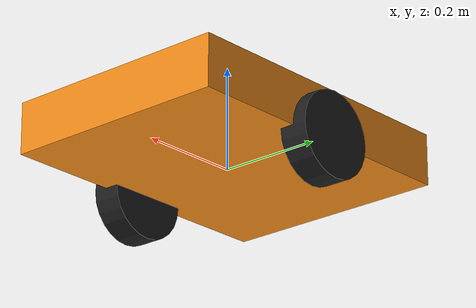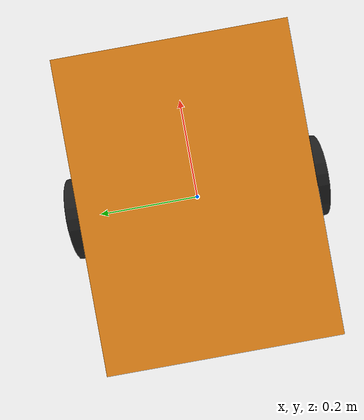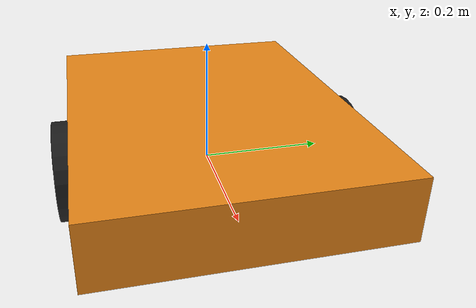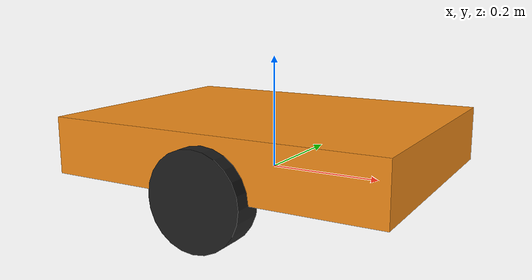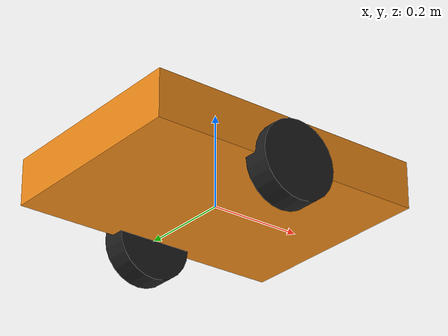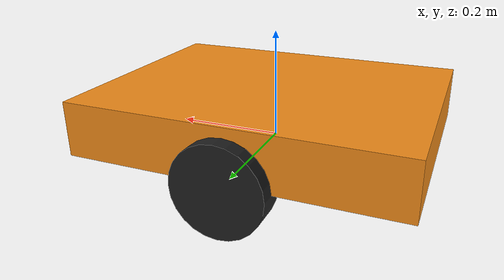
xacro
<?xml version="1.0"?>
<!-- 单板单串口模式：一块 STM32 通过一个串口控制全部 4 个轮子 -->
<!-- ros2_control 只暴露 2 个关节 (left/right)，ESC 统一驱动 4 轮 -->
<robot xmlns:xacro="http://www.ros.org/wiki/xacro" name="campuscar_single_board">

  <xacro:arg name="prefix"            default=""/>
  <xacro:property name="prefix"       value="$(arg prefix)"/>
  <xacro:arg name="device"           default="/dev/ttyUSB0"/>
  <xacro:arg name="feedback_format"  default="compact"/>
  <xacro:arg name="wheel_radius"     default="0.0825"/>
  <xacro:arg name="max_velocity"     default="1.0"/>
  <xacro:arg name="command_limit_rpm" default="50"/>

  <xacro:include filename="$(find hoverboard_driver)/urdf/diffbot.materials.xacro"/>
  <xacro:include filename="$(find hoverboard_driver)/ros2_control/hoverboard_driver.ros2_control.xacro"/>

  <!-- ======== 机器人本体 ======== -->
  <xacro:property name="PI"           value="3.1415926535897931"/>
  <xacro:property name="base_mass"    value="10.0"/>
  <xacro:property name="base_length"  value="0.60"/>
  <xacro:property name="base_width"   value="0.45"/>
  <xacro:property name="base_height"  value="0.10"/>
  <xacro:property name="wheel_mass"   value="1.5"/>
  <xacro:property name="wheel_radius_val" value="0.0825"/>
  <xacro:property name="wheel_len"    value="0.055"/>
  <xacro:property name="axle_offset_y" value="${base_width / 2.0}"/>

  <link name="${prefix}base_link">
    <collision>
      <origin xyz="0 0 ${base_height/2}" rpy="0 0 0"/>
      <geometry>
        <box size="${base_length} ${base_width} ${base_height}"/>
      </geometry>
    </collision>
    <visual>
      <origin xyz="0 0 ${base_height/2}" rpy="0 0 0"/>
      <geometry>
        <box size="${base_length} ${base_width} ${base_height}"/>
      </geometry>
      <material name="orange"/>
    </visual>
    <inertial>
      <origin xyz="0 0 0" rpy="0 0 0"/>
      <mass value="${base_mass}"/>
      <inertia
        ixx="${base_mass / 12.0 * (base_width*base_width   + base_height*base_height)}" ixy="0" ixz="0"
        iyy="${base_mass / 12.0 * (base_length*base_length + base_height*base_height)}" iyz="0"
        izz="${base_mass / 12.0 * (base_length*base_length + base_width*base_width)}"/>
    </inertial>
  </link>

  <!-- ======== 左轮 ======== -->
  <joint name="${prefix}left_wheel_joint" type="continuous">
    <parent link="${prefix}base_link"/>
    <child  link="${prefix}left_wheel"/>
    <origin xyz="0 ${axle_offset_y} 0" rpy="0 0 0"/>
    <axis xyz="0 1 0"/>
    <dynamics damping="0.2"/>
  </joint>
  <link name="${prefix}left_wheel">
    <collision>
      <origin xyz="0 0 0" rpy="${PI/2} 0 0"/>
      <geometry>
        <cylinder length="${wheel_len}" radius="${wheel_radius_val}"/>
      </geometry>
    </collision>
    <visual>
      <origin xyz="0 0 0" rpy="${PI/2} 0 0"/>
      <geometry>
        <cylinder length="${wheel_len}" radius="${wheel_radius_val}"/>
      </geometry>
      <material name="black"/>
    </visual>
    <inertial>
      <origin xyz="0 0 0" rpy="${PI/2} 0 0"/>
      <mass value="${wheel_mass}"/>
      <inertia
        ixx="${wheel_mass / 12.0 * (3*wheel_radius_val*wheel_radius_val + wheel_len*wheel_len)}" ixy="0" ixz="0"
        iyy="${wheel_mass / 12.0 * (3*wheel_radius_val*wheel_radius_val + wheel_len*wheel_len)}" iyz="0"
        izz="${wheel_mass / 2.0  *  wheel_radius_val*wheel_radius_val}"/>
    </inertial>
  </link>

  <!-- ======== 右轮 ======== -->
  <joint name="${prefix}right_wheel_joint" type="continuous">
    <parent link="${prefix}base_link"/>
    <child  link="${prefix}right_wheel"/>
    <origin xyz="0 ${-axle_offset_y} 0" rpy="0 0 0"/>
    <axis xyz="0 1 0"/>
    <dynamics damping="0.2"/>
  </joint>
  <link name="${prefix}right_wheel">
    <collision>
      <origin xyz="0 0 0" rpy="${PI/2} 0 0"/>
      <geometry>
        <cylinder length="${wheel_len}" radius="${wheel_radius_val}"/>
      </geometry>
    </collision>
    <visual>
      <origin xyz="0 0 0" rpy="${PI/2} 0 0"/>
      <geometry>
        <cylinder length="${wheel_len}" radius="${wheel_radius_val}"/>
      </geometry>
      <material name="black"/>
    </visual>
    <inertial>
      <origin xyz="0 0 0" rpy="${PI/2} 0 0"/>
      <mass value="${wheel_mass}"/>
      <inertia
        ixx="${wheel_mass / 12.0 * (3*wheel_radius_val*wheel_radius_val + wheel_len*wheel_len)}" ixy="0" ixz="0"
        iyy="${wheel_mass / 12.0 * (3*wheel_radius_val*wheel_radius_val + wheel_len*wheel_len)}" iyz="0"
        izz="${wheel_mass / 2.0  *  wheel_radius_val*wheel_radius_val}"/>
    </inertial>
  </link>

  <!-- ======== ros2_control 硬件接口 (单板单串口) ======== -->
  <xacro:hoverboard_axle_ros2_control
    name="HoverboardDriver"
    prefix="${prefix}"
    device="$(arg device)"
    wheel_radius="$(arg wheel_radius)"
    max_velocity="$(arg max_velocity)"
    command_limit_rpm="$(arg command_limit_rpm)"
    feedback_format="$(arg feedback_format)"/>

</robot>
